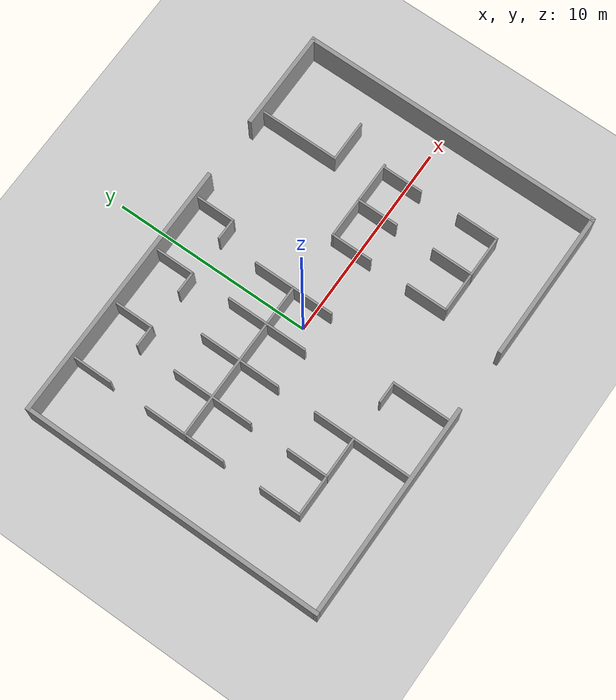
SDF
<sdf version="1.4">
 <world name="default">
  <light name="spotlight_0" type="point">
   <pose>-8 -6.5 1 0 0 0</pose>
   <diffuse>1.0 1.0 1.0 1</diffuse>
   <specular>0.1 0.1 0.1 1</specular>
   <attenuation><range>20</range><constant>1</constant><linear>0</linear><quadratic>0.0</quadratic></attenuation>
   <direction>-0 0 0</direction>
  </light>
  <light name="spotlight_4" type="point">
   <pose>-3 4 1 0 0 0</pose>
   <diffuse>1.0 1.0 1.0 1</diffuse>
   <specular>0.1 0.1 0.1 1</specular>
   <attenuation><range>20</range><constant>1</constant><linear>0</linear><quadratic>0.0</quadratic></attenuation>
   <direction>-0 0 0</direction>
  </light>
  <light name="spotlight_2" type="point">
   <pose>8 -1.5 1 0 0 0</pose>
   <diffuse>1 1 1 1</diffuse>
   <specular>0.1 0.1 0.1 1</specular>
   <attenuation><range>20</range><constant>1</constant><linear>0</linear><quadratic>0.0</quadratic></attenuation>
   <direction>-0 0 0</direction>
  </light>
  <model name="ground_plane">
   <static>1</static>
   <link name="link">
    <collision name="collision">
     <geometry><plane><normal>0 0 1</normal><size>100 100</size></plane></geometry>
     <surface><friction><ode><mu>100</mu><mu2>50</mu2></ode></friction></surface>
    </collision>
    <visual name="visual">
     <cast_shadows>0</cast_shadows>
     <geometry><plane><normal>0 0 1</normal><size>100 100</size></plane></geometry>
     <material>
      <script><uri>file://media/materials/scripts/gazebo.material</uri><name>Gazebo/Grey</name></script>
     </material>
    </visual>
    <velocity_decay><linear>0</linear><angular>0</angular></velocity_decay>
   </link>
  </model>
  <physics type="ode">
   <max_step_size>0.001</max_step_size>
   <real_time_factor>1</real_time_factor>
   <real_time_update_rate>1000</real_time_update_rate>
   <gravity>0 0 -9.8</gravity>
  </physics>
  <scene><ambient>0.4 0.4 0.4 1</ambient><background>0.7 0.7 0.7 1</background><shadows>1</shadows></scene>
  <model name="SpringCubicleBigger">
   <link name="Wall_0">
    <collision name="Wall_0_Collision">
     <geometry><box><size>15.2 0.2 2</size></box></geometry>
     <pose>0 0 1 0 -0 0</pose>
    </collision>
    <visual name="Wall_0_Visual">
     <pose>0 0 1 0 -0 0</pose>
     <geometry><box><size>15.2 0.2 2</size></box></geometry>
     <material>
      <script><uri>file://media/materials/scripts/gazebo.material</uri><name>Gazebo/Grey</name></script>
     </material>
    </visual>
    <velocity_decay><linear>0</linear><angular>0</angular></velocity_decay>
    <pose>0 7.5 0 0 -0 1.5708</pose>
   </link>
   <link name="Wall_1">
    <pose>10.5 15 0 0 -0 0</pose>
    <visual name="Wall_1_Visual_0">
     <pose>-4.02041 0 1 0 -0 0</pose>
     <geometry><box><size>13.1592 0.2 2</size></box></geometry>
     <material>
      <script><uri>file://media/materials/scripts/gazebo.material</uri><name>Gazebo/Grey</name></script>
     </material>
    </visual>
    <collision name="Wall_1_Collision_0">
     <geometry><box><size>13.1592 0.2 2</size></box></geometry>
     <pose>-4.02041 0 1 0 -0 0</pose>
    </collision>
    <visual name="Wall_1_Visual_1">
     <pose>8.07959 0 1 0 -0 0</pose>
     <geometry><box><size>5.04081 0.2 2</size></box></geometry>
     <material>
      <script><uri>file://media/materials/scripts/gazebo.material</uri><name>Gazebo/Grey</name></script>
     </material>
    </visual>
    <collision name="Wall_1_Collision_1">
     <geometry><box><size>5.04081 0.2 2</size></box></geometry>
     <pose>8.07959 0 1 0 -0 0</pose>
    </collision>
    <velocity_decay><linear>0</linear><angular>0</angular></velocity_decay>
   </link>
   <link name="Wall_17">
    <collision name="Wall_17_Collision">
     <geometry><box><size>2.1 0.1 1.5</size></box></geometry>
     <pose>0 0 0.75 0 -0 0</pose>
    </collision>
    <visual name="Wall_17_Visual">
     <pose>0 0 0.75 0 -0 0</pose>
     <geometry><box><size>2.1 0.1 1.5</size></box></geometry>
     <material>
      <script><uri>file://media/materials/scripts/gazebo.material</uri><name>Gazebo/Grey</name></script>
     </material>
    </visual>
    <velocity_decay><linear>0</linear><angular>0</angular></velocity_decay>
    <pose>17.9191 8 0 0 -0 1.5708</pose>
   </link>
   <link name="Wall_19">
    <collision name="Wall_19_Collision">
     <geometry><box><size>2.1 0.1 1.5</size></box></geometry>
     <pose>0 0 0.75 0 -0 0</pose>
    </collision>
    <visual name="Wall_19_Visual">
     <pose>0 0 0.75 0 -0 0</pose>
     <geometry><box><size>2.1 0.1 1.5</size></box></geometry>
     <material>
      <script><uri>file://media/materials/scripts/gazebo.material</uri><name>Gazebo/Grey</name></script>
     </material>
    </visual>
    <velocity_decay><linear>0</linear><angular>0</angular></velocity_decay>
    <pose>16 8 0 0 0 -1.5708</pose>
   </link>
   <link name="Wall_2">
    <collision name="Wall_2_Collision">
     <geometry><box><size>15.2 0.2 2</size></box></geometry>
     <pose>0 0 1 0 -0 0</pose>
    </collision>
    <visual name="Wall_2_Visual">
     <pose>0 0 1 0 -0 0</pose>
     <geometry><box><size>15.2 0.2 2</size></box></geometry>
     <material>
      <script><uri>file://media/materials/scripts/gazebo.material</uri><name>Gazebo/Grey</name></script>
     </material>
    </visual>
    <velocity_decay><linear>0</linear><angular>0</angular></velocity_decay>
    <pose>21 7.5 0 0 0 -1.5708</pose>
   </link>
   <link name="Wall_21">
    <collision name="Wall_21_Collision">
     <geometry><box><size>2.1 0.1 1.5</size></box></geometry>
     <pose>0 0 0.75 0 -0 0</pose>
    </collision>
    <visual name="Wall_21_Visual">
     <pose>0 0 0.75 0 -0 0</pose>
     <geometry><box><size>2.1 0.1 1.5</size></box></geometry>
     <material>
      <script><uri>file://media/materials/scripts/gazebo.material</uri><name>Gazebo/Grey</name></script>
     </material>
    </visual>
    <velocity_decay><linear>0</linear><angular>0</angular></velocity_decay>
    <pose>3 8 0 0 -0 1.5708</pose>
   </link>
   <link name="Wall_24">
    <collision name="Wall_24_Collision">
     <geometry><box><size>4.1 0.1 1.5</size></box></geometry>
     <pose>0 0 0.75 0 -0 0</pose>
    </collision>
    <visual name="Wall_24_Visual">
     <pose>0 0 0.75 0 -0 0</pose>
     <geometry><box><size>4.1 0.1 1.5</size></box></geometry>
     <material>
      <script><uri>file://media/materials/scripts/gazebo.material</uri><name>Gazebo/Grey</name></script>
     </material>
    </visual>
    <velocity_decay><linear>0</linear><angular>0</angular></velocity_decay>
    <pose>5 9 0 0 0 -1.5708</pose>
   </link>
   <link name="Wall_26">
    <collision name="Wall_26_Collision">
     <geometry><box><size>4.1 0.1 1.5</size></box></geometry>
     <pose>0 0 0.75 0 -0 0</pose>
    </collision>
    <visual name="Wall_26_Visual">
     <pose>0 0 0.75 0 -0 0</pose>
     <geometry><box><size>4.1 0.1 1.5</size></box></geometry>
     <material>
      <script><uri>file://media/materials/scripts/gazebo.material</uri><name>Gazebo/Grey</name></script>
     </material>
    </visual>
    <velocity_decay><linear>0</linear><angular>0</angular></velocity_decay>
    <pose>7 9 0 0 0 -1.5708</pose>
   </link>
   <link name="Wall_28">
    <collision name="Wall_28_Collision">
     <geometry><box><size>4.1 0.1 1.5</size></box></geometry>
     <pose>0 0 0.75 0 -0 0</pose>
    </collision>
    <visual name="Wall_28_Visual">
     <pose>0 0 0.75 0 -0 0</pose>
     <geometry><box><size>4.1 0.1 1.5</size></box></geometry>
     <material>
      <script><uri>file://media/materials/scripts/gazebo.material</uri><name>Gazebo/Grey</name></script>
     </material>
    </visual>
    <velocity_decay><linear>0</linear><angular>0</angular></velocity_decay>
    <pose>9 9 0 0 0 -1.5708</pose>
   </link>
   <link name="Wall_3">
    <pose>10.5 0 0 0 -0 3.14159</pose>
    <visual name="Wall_3_Visual_0">
     <pose>-6.84675 0 1 0 -0 0</pose>
     <geometry><box><size>7.50649 0.2 2</size></box></geometry>
     <material>
      <script><uri>file://media/materials/scripts/gazebo.material</uri><name>Gazebo/Grey</name></script>
     </material>
    </visual>
    <collision name="Wall_3_Collision_0">
     <geometry><box><size>7.50649 0.2 2</size></box></geometry>
     <pose>-6.84675 0 1 0 -0 0</pose>
    </collision>
    <visual name="Wall_3_Visual_1">
     <pose>5.25325 0 1 0 -0 0</pose>
     <geometry><box><size>10.6935 0.2 2</size></box></geometry>
     <material>
      <script><uri>file://media/materials/scripts/gazebo.material</uri><name>Gazebo/Grey</name></script>
     </material>
    </visual>
    <collision name="Wall_3_Collision_1">
     <geometry><box><size>10.6935 0.2 2</size></box></geometry>
     <pose>5.25325 0 1 0 -0 0</pose>
    </collision>
    <velocity_decay><linear>0</linear><angular>0</angular></velocity_decay>
   </link>
   <link name="Wall_30">
    <collision name="Wall_30_Collision">
     <geometry><box><size>2.1 0.1 1.5</size></box></geometry>
     <pose>0 0 0.75 0 -0 0</pose>
    </collision>
    <visual name="Wall_30_Visual">
     <pose>0 0 0.75 0 -0 0</pose>
     <geometry><box><size>2.1 0.1 1.5</size></box></geometry>
     <material>
      <script><uri>file://media/materials/scripts/gazebo.material</uri><name>Gazebo/Grey</name></script>
     </material>
    </visual>
    <velocity_decay><linear>0</linear><angular>0</angular></velocity_decay>
    <pose>11 8 0 0 0 -1.5708</pose>
   </link>
   <link name="Wall_32">
    <collision name="Wall_32_Collision">
     <geometry><box><size>2.1 0.1 1.5</size></box></geometry>
     <pose>0 0 0.75 0 -0 0</pose>
    </collision>
    <visual name="Wall_32_Visual">
     <pose>0 0 0.75 0 -0 0</pose>
     <geometry><box><size>2.1 0.1 1.5</size></box></geometry>
     <material>
      <script><uri>file://media/materials/scripts/gazebo.material</uri><name>Gazebo/Grey</name></script>
     </material>
    </visual>
    <velocity_decay><linear>0</linear><angular>0</angular></velocity_decay>
    <pose>3 4 0 0 0 -1.5708</pose>
   </link>
   <link name="Wall_33">
    <collision name="Wall_33_Collision">
     <geometry><box><size>2.1 0.1 1.5</size></box></geometry>
     <pose>0 0 0.75 0 -0 0</pose>
    </collision>
    <visual name="Wall_33_Visual">
     <pose>0 0 0.75 0 -0 0</pose>
     <geometry><box><size>2.1 0.1 1.5</size></box></geometry>
     <material>
      <script><uri>file://media/materials/scripts/gazebo.material</uri><name>Gazebo/Grey</name></script>
     </material>
    </visual>
    <velocity_decay><linear>0</linear><angular>0</angular></velocity_decay>
    <pose>4 3 0 0 -0 0</pose>
   </link>
   <link name="Wall_41">
    <collision name="Wall_41_Collision">
     <geometry><box><size>5.1 0.1 1.5</size></box></geometry>
     <pose>0 0 0.75 0 -0 0</pose>
    </collision>
    <visual name="Wall_41_Visual">
     <pose>0 0 0.75 0 -0 0</pose>
     <geometry><box><size>5.1 0.1 1.5</size></box></geometry>
     <material>
      <script><uri>file://media/materials/scripts/gazebo.material</uri><name>Gazebo/Grey</name></script>
     </material>
    </visual>
    <velocity_decay><linear>0</linear><angular>0</angular></velocity_decay>
    <pose>7 2.5 0 0 0 -1.5708</pose>
   </link>
   <link name="Wall_43">
    <collision name="Wall_43_Collision">
     <geometry><box><size>2.1 0.1 1.5</size></box></geometry>
     <pose>0 0 0.75 0 -0 0</pose>
    </collision>
    <visual name="Wall_43_Visual">
     <pose>0 0 0.75 0 -0 0</pose>
     <geometry><box><size>2.1 0.1 1.5</size></box></geometry>
     <material>
      <script><uri>file://media/materials/scripts/gazebo.material</uri><name>Gazebo/Grey</name></script>
     </material>
    </visual>
    <velocity_decay><linear>0</linear><angular>0</angular></velocity_decay>
    <pose>5 4 0 0 0 -1.5708</pose>
   </link>
   <link name="Wall_44">
    <collision name="Wall_44_Collision">
     <geometry><box><size>2.1 0.1 1.5</size></box></geometry>
     <pose>0 0 0.75 0 -0 0</pose>
    </collision>
    <visual name="Wall_44_Visual">
     <pose>0 0 0.75 0 -0 0</pose>
     <geometry><box><size>2.1 0.1 1.5</size></box></geometry>
     <material>
      <script><uri>file://media/materials/scripts/gazebo.material</uri><name>Gazebo/Grey</name></script>
     </material>
    </visual>
    <velocity_decay><linear>0</linear><angular>0</angular></velocity_decay>
    <pose>6 3 0 0 -0 0</pose>
   </link>
   <link name="Wall_46">
    <collision name="Wall_46_Collision">
     <geometry><box><size>1.1 0.1 1.5</size></box></geometry>
     <pose>0 0 0.75 0 -0 0</pose>
    </collision>
    <visual name="Wall_46_Visual">
     <pose>0 0 0.75 0 -0 0</pose>
     <geometry><box><size>1.1 0.1 1.5</size></box></geometry>
     <material>
      <script><uri>file://media/materials/scripts/gazebo.material</uri><name>Gazebo/Grey</name></script>
     </material>
    </visual>
    <velocity_decay><linear>0</linear><angular>0</angular></velocity_decay>
    <pose>9.5 3 0 0 -0 0</pose>
   </link>
   <link name="Wall_47">
    <collision name="Wall_47_Collision">
     <geometry><box><size>3.1 0.1 1.5</size></box></geometry>
     <pose>0 0 0.75 0 -0 0</pose>
    </collision>
    <visual name="Wall_47_Visual">
     <pose>0 0 0.75 0 -0 0</pose>
     <geometry><box><size>3.1 0.1 1.5</size></box></geometry>
     <material>
      <script><uri>file://media/materials/scripts/gazebo.material</uri><name>Gazebo/Grey</name></script>
     </material>
    </visual>
    <velocity_decay><linear>0</linear><angular>0</angular></velocity_decay>
    <pose>10 1.5 0 0 0 -1.5708</pose>
   </link>
   <link name="Wall_49">
    <collision name="Wall_49_Collision">
     <geometry><box><size>2.1 0.1 1.5</size></box></geometry>
     <pose>0 0 0.75 0 -0 0</pose>
    </collision>
    <visual name="Wall_49_Visual">
     <pose>0 0 0.75 0 -0 0</pose>
     <geometry><box><size>2.1 0.1 1.5</size></box></geometry>
     <material>
      <script><uri>file://media/materials/scripts/gazebo.material</uri><name>Gazebo/Grey</name></script>
     </material>
    </visual>
    <velocity_decay><linear>0</linear><angular>0</angular></velocity_decay>
    <pose>14 4 0 0 0 -1.5708</pose>
   </link>
   <link name="Wall_5">
    <collision name="Wall_5_Collision">
     <geometry><box><size>2.1 0.1 1.5</size></box></geometry>
     <pose>0 0 0.75 0 -0 0</pose>
    </collision>
    <visual name="Wall_5_Visual">
     <pose>0 0 0.75 0 -0 0</pose>
     <geometry><box><size>2.1 0.1 1.5</size></box></geometry>
     <material>
      <script><uri>file://media/materials/scripts/gazebo.material</uri><name>Gazebo/Grey</name></script>
     </material>
    </visual>
    <velocity_decay><linear>0</linear><angular>0</angular></velocity_decay>
    <pose>3 14 0 0 0 -1.5708</pose>
   </link>
   <link name="Wall_50">
    <collision name="Wall_50_Collision">
     <geometry><box><size>2.1 0.1 1.5</size></box></geometry>
     <pose>0 0 0.75 0 -0 0</pose>
    </collision>
    <visual name="Wall_50_Visual">
     <pose>0 0 0.75 0 -0 0</pose>
     <geometry><box><size>2.1 0.1 1.5</size></box></geometry>
     <material>
      <script><uri>file://media/materials/scripts/gazebo.material</uri><name>Gazebo/Grey</name></script>
     </material>
    </visual>
    <velocity_decay><linear>0</linear><angular>0</angular></velocity_decay>
    <pose>15 3 0 0 -0 0</pose>
   </link>
   <link name="Wall_51">
    <collision name="Wall_51_Collision">
     <geometry><box><size>2.1 0.1 1.5</size></box></geometry>
     <pose>0 0 0.75 0 -0 0</pose>
    </collision>
    <visual name="Wall_51_Visual">
     <pose>0 0 0.75 0 -0 0</pose>
     <geometry><box><size>2.1 0.1 1.5</size></box></geometry>
     <material>
      <script><uri>file://media/materials/scripts/gazebo.material</uri><name>Gazebo/Grey</name></script>
     </material>
    </visual>
    <velocity_decay><linear>0</linear><angular>0</angular></velocity_decay>
    <pose>16 4 0 0 -0 1.5708</pose>
   </link>
   <link name="Wall_53">
    <collision name="Wall_53_Collision">
     <geometry><box><size>2.1 0.1 1.5</size></box></geometry>
     <pose>0 0 0.75 0 -0 0</pose>
    </collision>
    <visual name="Wall_53_Visual">
     <pose>0 0 0.75 0 -0 0</pose>
     <geometry><box><size>2.1 0.1 1.5</size></box></geometry>
     <material>
      <script><uri>file://media/materials/scripts/gazebo.material</uri><name>Gazebo/Grey</name></script>
     </material>
    </visual>
    <velocity_decay><linear>0</linear><angular>0</angular></velocity_decay>
    <pose>17 3 0 0 -0 0</pose>
   </link>
   <link name="Wall_54">
    <collision name="Wall_54_Collision">
     <geometry><box><size>2.1 0.1 1.5</size></box></geometry>
     <pose>0 0 0.75 0 -0 0</pose>
    </collision>
    <visual name="Wall_54_Visual">
     <pose>0 0 0.75 0 -0 0</pose>
     <geometry><box><size>2.1 0.1 1.5</size></box></geometry>
     <material>
      <script><uri>file://media/materials/scripts/gazebo.material</uri><name>Gazebo/Grey</name></script>
     </material>
    </visual>
    <velocity_decay><linear>0</linear><angular>0</angular></velocity_decay>
    <pose>18 4 0 0 -0 1.5708</pose>
   </link>
   <link name="Wall_56">
    <collision name="Wall_56_Collision">
     <geometry><box><size>4.1 0.1 1.5</size></box></geometry>
     <pose>0 0 0.75 0 -0 0</pose>
    </collision>
    <visual name="Wall_56_Visual">
     <pose>0 0 0.75 0 -0 0</pose>
     <geometry><box><size>4.1 0.1 1.5</size></box></geometry>
     <material>
      <script><uri>file://media/materials/scripts/gazebo.material</uri><name>Gazebo/Grey</name></script>
     </material>
    </visual>
    <velocity_decay><linear>0</linear><angular>0</angular></velocity_decay>
    <pose>17 13 0 0 0 -1.5708</pose>
   </link>
   <link name="Wall_57">
    <collision name="Wall_57_Collision">
     <geometry><box><size>2.1 0.1 1.5</size></box></geometry>
     <pose>0 0 0.75 0 -0 0</pose>
    </collision>
    <visual name="Wall_57_Visual">
     <pose>0 0 0.75 0 -0 0</pose>
     <geometry><box><size>2.1 0.1 1.5</size></box></geometry>
     <material>
      <script><uri>file://media/materials/scripts/gazebo.material</uri><name>Gazebo/Grey</name></script>
     </material>
    </visual>
    <velocity_decay><linear>0</linear><angular>0</angular></velocity_decay>
    <pose>18 11 0 0 -0 0</pose>
   </link>
   <link name="Wall_60">
    <collision name="Wall_60_Collision">
     <geometry><box><size>2.1 0.1 1.5</size></box></geometry>
     <pose>0 0 0.75 0 -0 0</pose>
    </collision>
    <visual name="Wall_60_Visual">
     <pose>0 0 0.75 0 -0 0</pose>
     <geometry><box><size>2.1 0.1 1.5</size></box></geometry>
     <material>
      <script><uri>file://media/materials/scripts/gazebo.material</uri><name>Gazebo/Grey</name></script>
     </material>
    </visual>
    <velocity_decay><linear>0</linear><angular>0</angular></velocity_decay>
    <pose>14 8 0 0 0 -1.5708</pose>
   </link>
   <link name="Wall_62">
    <collision name="Wall_62_Collision">
     <geometry><box><size>2.1 0.1 1.5</size></box></geometry>
     <pose>0 0 0.75 0 -0 0</pose>
    </collision>
    <visual name="Wall_62_Visual">
     <pose>0 0 0.75 0 -0 0</pose>
     <geometry><box><size>2.1 0.1 1.5</size></box></geometry>
     <material>
      <script><uri>file://media/materials/scripts/gazebo.material</uri><name>Gazebo/Grey</name></script>
     </material>
    </visual>
    <velocity_decay><linear>0</linear><angular>0</angular></velocity_decay>
    <pose>6 14 0 0 0 -1.5708</pose>
   </link>
   <link name="Wall_63">
    <collision name="Wall_63_Collision">
     <geometry><box><size>1.1 0.1 1.5</size></box></geometry>
     <pose>0 0 0.75 0 -0 0</pose>
    </collision>
    <visual name="Wall_63_Visual">
     <pose>0 0 0.75 0 -0 0</pose>
     <geometry><box><size>1.1 0.1 1.5</size></box></geometry>
     <material>
      <script><uri>file://media/materials/scripts/gazebo.material</uri><name>Gazebo/Grey</name></script>
     </material>
    </visual>
    <velocity_decay><linear>0</linear><angular>0</angular></velocity_decay>
    <pose>5.5 13 0 0 -0 3.14159</pose>
   </link>
   <link name="Wall_67">
    <collision name="Wall_67_Collision">
     <geometry><box><size>2.1 0.1 1.5</size></box></geometry>
     <pose>0 0 0.75 0 -0 0</pose>
    </collision>
    <visual name="Wall_67_Visual">
     <pose>0 0 0.75 0 -0 0</pose>
     <geometry><box><size>2.1 0.1 1.5</size></box></geometry>
     <material>
      <script><uri>file://media/materials/scripts/gazebo.material</uri><name>Gazebo/Grey</name></script>
     </material>
    </visual>
    <velocity_decay><linear>0</linear><angular>0</angular></velocity_decay>
    <pose>9 14 0 0 0 -1.5708</pose>
   </link>
   <link name="Wall_68">
    <collision name="Wall_68_Collision">
     <geometry><box><size>1.1 0.1 1.5</size></box></geometry>
     <pose>0 0 0.75 0 -0 0</pose>
    </collision>
    <visual name="Wall_68_Visual">
     <pose>0 0 0.75 0 -0 0</pose>
     <geometry><box><size>1.1 0.1 1.5</size></box></geometry>
     <material>
      <script><uri>file://media/materials/scripts/gazebo.material</uri><name>Gazebo/Grey</name></script>
     </material>
    </visual>
    <velocity_decay><linear>0</linear><angular>0</angular></velocity_decay>
    <pose>8.5 13 0 0 -0 3.14159</pose>
   </link>
   <link name="Wall_7">
    <collision name="Wall_7_Collision">
     <geometry><box><size>2.2 0.1 1.5</size></box></geometry>
     <pose>0 0 0.75 0 -0 0</pose>
    </collision>
    <visual name="Wall_7_Visual">
     <pose>0 0 0.75 0 -0 0</pose>
     <geometry><box><size>2.2 0.1 1.5</size></box></geometry>
     <material>
      <script><uri>file://media/materials/scripts/gazebo.material</uri><name>Gazebo/Grey</name></script>
     </material>
    </visual>
    <velocity_decay><linear>0</linear><angular>0</angular></velocity_decay>
    <pose>3 10 0 0 0 -1.5708</pose>
   </link>
   <link name="Wall_70">
    <collision name="Wall_70_Collision">
     <geometry><box><size>2.0607 0.1 1.5</size></box></geometry>
     <pose>0 0 0.75 0 -0 0</pose>
    </collision>
    <visual name="Wall_70_Visual">
     <pose>0 0 0.75 0 -0 0</pose>
     <geometry><box><size>2.0607 0.1 1.5</size></box></geometry>
     <material>
      <script><uri>file://media/materials/scripts/gazebo.material</uri><name>Gazebo/Grey</name></script>
     </material>
    </visual>
    <velocity_decay><linear>0</linear><angular>0</angular></velocity_decay>
    <pose>12.0028 13.9803 0 0 0 -1.57363</pose>
   </link>
   <link name="Wall_71">
    <collision name="Wall_71_Collision">
     <geometry><box><size>1.1 0.1 1.5</size></box></geometry>
     <pose>0 0 0.75 0 -0 0</pose>
    </collision>
    <visual name="Wall_71_Visual">
     <pose>0 0 0.75 0 -0 0</pose>
     <geometry><box><size>1.1 0.1 1.5</size></box></geometry>
     <material>
      <script><uri>file://media/materials/scripts/gazebo.material</uri><name>Gazebo/Grey</name></script>
     </material>
    </visual>
    <velocity_decay><linear>0</linear><angular>0</angular></velocity_decay>
    <pose>11.5 13 0 0 -0 3.14159</pose>
   </link>
   <link name="Wall_73">
    <collision name="Wall_73_Collision">
     <geometry><box><size>4.1 0.1 1.5</size></box></geometry>
     <pose>0 0 0.75 0 -0 0</pose>
    </collision>
    <visual name="Wall_73_Visual">
     <pose>0 0 0.75 0 -0 0</pose>
     <geometry><box><size>4.1 0.1 1.5</size></box></geometry>
     <material>
      <script><uri>file://media/materials/scripts/gazebo.material</uri><name>Gazebo/Grey</name></script>
     </material>
    </visual>
    <velocity_decay><linear>0</linear><angular>0</angular></velocity_decay>
    <pose>16 9 0 0 -0 0</pose>
   </link>
   <link name="Wall_8">
    <collision name="Wall_8_Collision">
     <geometry><box><size>8.1 0.1 1.5</size></box></geometry>
     <pose>0 0 0.75 0 -0 0</pose>
    </collision>
    <visual name="Wall_8_Visual">
     <pose>0 0 0.75 0 -0 0</pose>
     <geometry><box><size>8.1 0.1 1.5</size></box></geometry>
     <material>
      <script><uri>file://media/materials/scripts/gazebo.material</uri><name>Gazebo/Grey</name></script>
     </material>
    </visual>
    <velocity_decay><linear>0</linear><angular>0</angular></velocity_decay>
    <pose>7 9 0 0 -0 0</pose>
   </link>
   <link name="Wall_9">
    <collision name="Wall_9_Collision">
     <geometry><box><size>2.1 0.1 1.5</size></box></geometry>
     <pose>0 0 0.75 0 -0 0</pose>
    </collision>
    <visual name="Wall_9_Visual">
     <pose>0 0 0.75 0 -0 0</pose>
     <geometry><box><size>2.1 0.1 1.5</size></box></geometry>
     <material>
      <script><uri>file://media/materials/scripts/gazebo.material</uri><name>Gazebo/Grey</name></script>
     </material>
    </visual>
    <velocity_decay><linear>0</linear><angular>0</angular></velocity_decay>
    <pose>11 10 0 0 -0 1.5708</pose>
   </link>
   <static>1</static>
   <pose>-10.0476 -7.81228 0 0 -0 0</pose>
  </model>
 </world>
</sdf>
